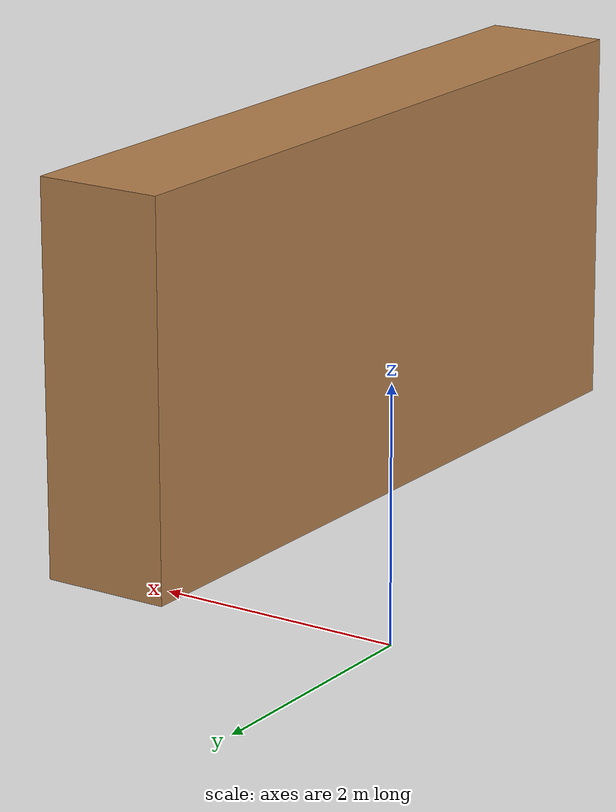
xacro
<?xml version="1.0"?>
<robot name="table"
       xmlns:xi="http://www.w3.org/2001/XInclude"
       xmlns:gazebo="http://playerstage.sourceforge.net/gazebo/xmlschema/#gz"
       xmlns:model="http://playerstage.sourceforge.net/gazebo/xmlschema/#model"
       xmlns:sensor="http://playerstage.sourceforge.net/gazebo/xmlschema/#sensor"
       xmlns:body="http://playerstage.sourceforge.net/gazebo/xmlschema/#body"
       xmlns:geom="http://playerstage.sourceforge.net/gazebo/xmlschema/#geom"
       xmlns:joint="http://playerstage.sourceforge.net/gazebo/xmlschema/#joint"
       xmlns:interface="http://playerstage.sourceforge.net/gazebo/xmlschema/#interface"
       xmlns:rendering="http://playerstage.sourceforge.net/gazebo/xmlschema/#rendering"
       xmlns:renderable="http://playerstage.sourceforge.net/gazebo/xmlschema/#renderable"
       xmlns:controller="http://playerstage.sourceforge.net/gazebo/xmlschema/#controller"
       xmlns:physics="http://playerstage.sourceforge.net/gazebo/xmlschema/#physics">

  <property name="table_height" value="0.55" />
  <property name="table_width" value="1.0" />
  <property name="table_depth" value="6.08" />
  <property name="leg_radius" value="0.02" />
  <property name="table_x" value="1.50" />
  <property name="table_y" value="-1.6" />
  <property name="table_z" value="3.0" />

  <property name="table_mass" value="10" />

  <property name="table_top_thickness" value="3"/>

  <property name="M_PI" value="3.1415926535897931" />

  <!-- tabletop height is .55+.01+.025=.585 -->
  <link name="table_top_link">
    <inertial>
        <mass value="${table_mass}" />
      <origin xyz="${table_x} ${table_y} ${table_z+table_height-table_top_thickness/2}" />
      <inertia ixx="1" ixy="0"  ixz="0"
               iyy="1" iyz="0"
               izz="1" />
    </inertial>
    <visual>
      <origin xyz="${table_x} ${table_y} ${table_z+table_height-table_top_thickness/2}" />
      <geometry>
        <box size="${table_width} ${table_depth} ${table_top_thickness}" />
      </geometry>
    </visual>
    <collision>
      <origin xyz="${table_x} ${table_y} ${table_z+table_height-table_top_thickness/2}" />
      <geometry>
        <box size="${table_width} ${table_depth} ${table_top_thickness}" />
      </geometry>
    </collision>
  </link>
  <gazebo reference="table_top_link">
    <material>Gazebo/LightWood</material>
    <mu1>50.0</mu1>
    <mu2>50.0</mu2>
    <kp>1000000.0</kp>
    <kd>1.0</kd>
  </gazebo>

  <gazebo>
    <canonicalBody>table_top_link</canonicalBody>
  </gazebo>

</robot>
